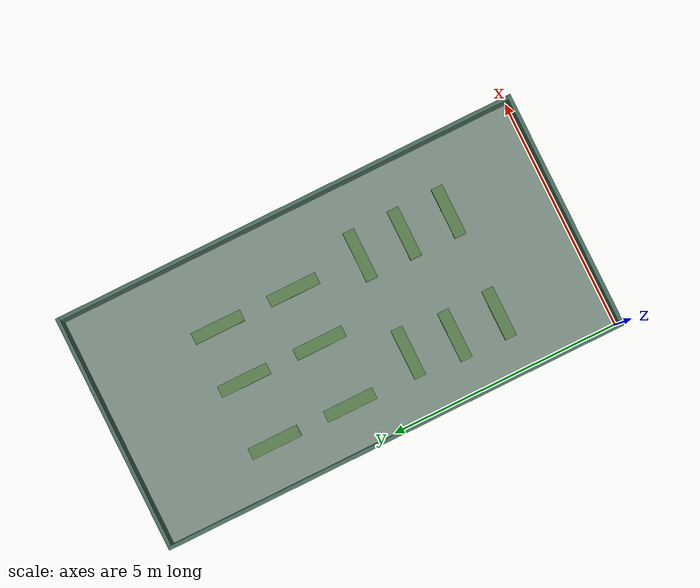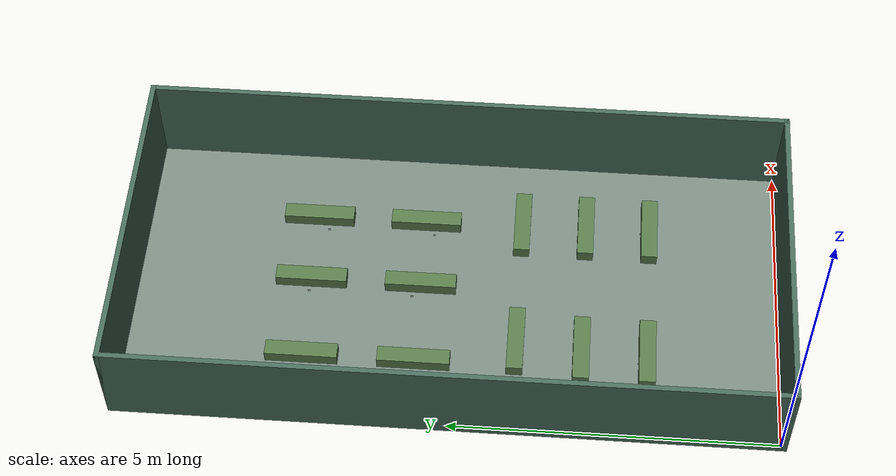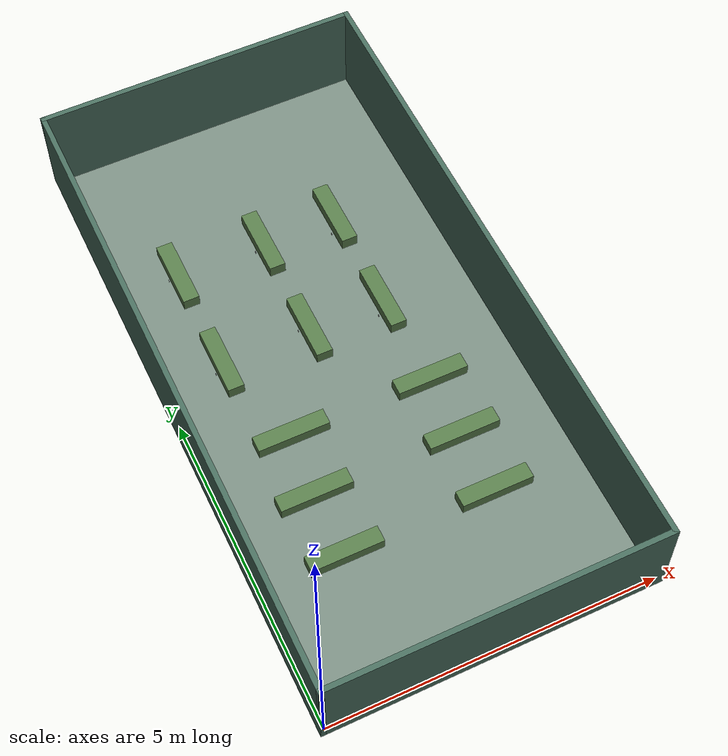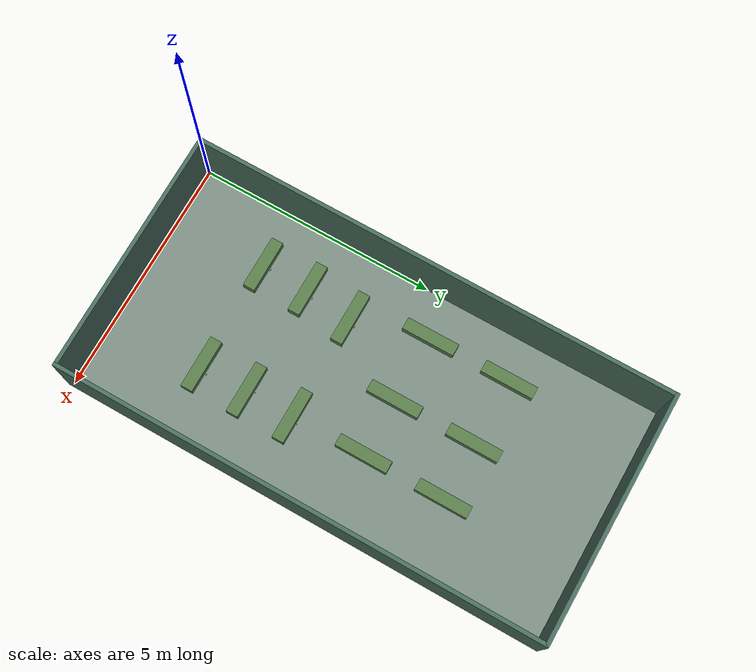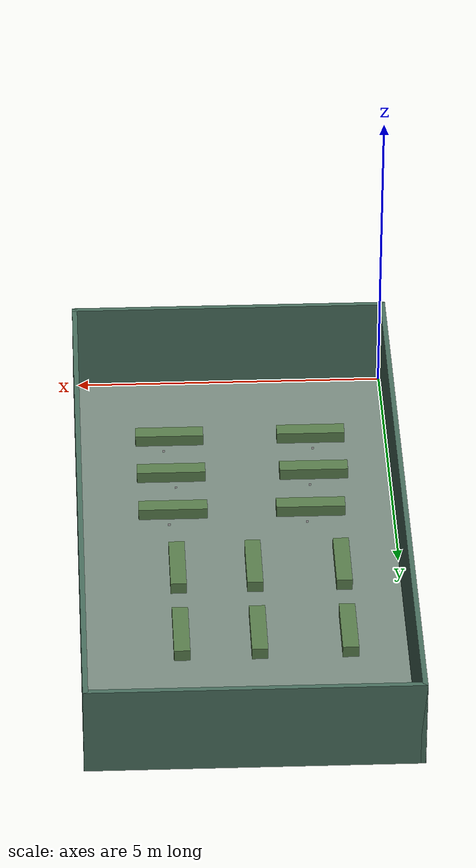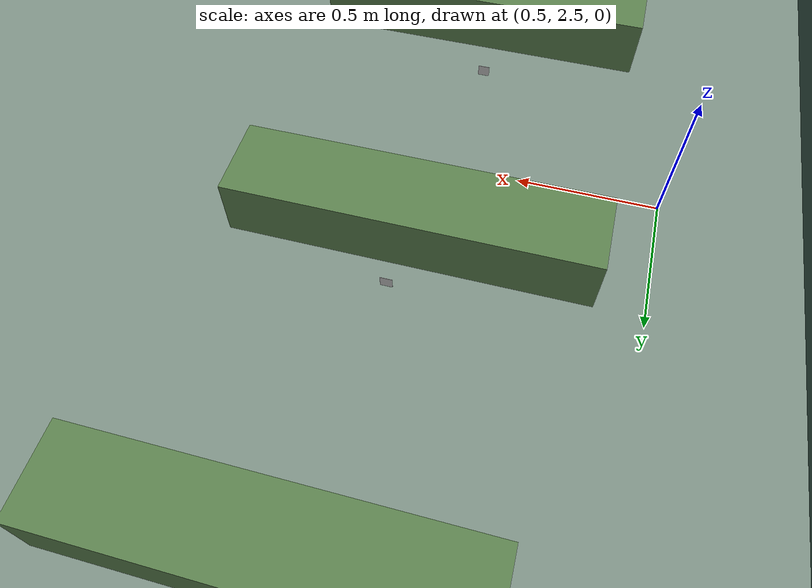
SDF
<sdf version="1.7">
 <world name="mdp_greenhouse">
  <gravity>0 0 -9.8066</gravity>
  <physics name="default_physics" type="ode">
   <max_step_size>0.001</max_step_size>
   <real_time_factor>1</real_time_factor>
   <real_time_update_rate>1000</real_time_update_rate>
  </physics>
  <scene>
   <ambient>0.55 0.58 0.55 1</ambient>
   <background>0.78 0.84 0.88 1</background>
   <shadows>1</shadows>
  </scene>
  <light name="sun" type="directional">
   <pose>2.5 5 10 0 -0 0</pose>
   <diffuse>0.8 0.8 0.75 1</diffuse>
   <specular>0.2 0.2 0.2 1</specular>
   <direction>-0.25 0.45 -1</direction>
   <attenuation><range>10</range></attenuation>
   <spot><inner_angle>0</inner_angle><outer_angle>0</outer_angle><falloff>0</falloff></spot>
  </light>
  <model name="mdp_greenhouse_environment">
   <static>1</static>
   <link name="floor">
    <pose>2.5 5 -0.01 0 -0 0</pose>
    <collision name="collision"><geometry><box><size>5 10 0.02</size></box></geometry></collision>
    <visual name="visual">
     <geometry><box><size>5 10 0.02</size></box></geometry>
     <material><ambient>0.47 0.54 0.5 1</ambient><diffuse>0.47 0.54 0.5 1</diffuse></material>
    </visual>
   </link>
   <link name="west_wall">
    <pose>-0.04 5 0.75 0 -0 0</pose>
    <collision name="collision"><geometry><box><size>0.08 10.16 1.5</size></box></geometry></collision>
    <visual name="visual">
     <geometry><box><size>0.08 10.16 1.5</size></box></geometry>
     <material><ambient>0.28 0.42 0.36 1</ambient><diffuse>0.28 0.42 0.36 1</diffuse></material>
    </visual>
   </link>
   <link name="east_wall">
    <pose>5.04 5 0.75 0 -0 0</pose>
    <collision name="collision"><geometry><box><size>0.08 10.16 1.5</size></box></geometry></collision>
    <visual name="visual">
     <geometry><box><size>0.08 10.16 1.5</size></box></geometry>
     <material><ambient>0.28 0.42 0.36 1</ambient><diffuse>0.28 0.42 0.36 1</diffuse></material>
    </visual>
   </link>
   <link name="south_wall">
    <pose>2.5 -0.04 0.75 0 -0 0</pose>
    <collision name="collision"><geometry><box><size>5.16 0.08 1.5</size></box></geometry></collision>
    <visual name="visual">
     <geometry><box><size>5.16 0.08 1.5</size></box></geometry>
     <material><ambient>0.28 0.42 0.36 1</ambient><diffuse>0.28 0.42 0.36 1</diffuse></material>
    </visual>
   </link>
   <link name="north_wall">
    <pose>2.5 10.04 0.75 0 -0 0</pose>
    <collision name="collision"><geometry><box><size>5.16 0.08 1.5</size></box></geometry></collision>
    <visual name="visual">
     <geometry><box><size>5.16 0.08 1.5</size></box></geometry>
     <material><ambient>0.28 0.42 0.36 1</ambient><diffuse>0.28 0.42 0.36 1</diffuse></material>
    </visual>
   </link>
   <link name="table_1">
    <pose>1.25 2.025 0.375 0 -0 0</pose>
    <collision name="collision"><geometry><box><size>1.1 0.25 0.19</size></box></geometry></collision>
    <visual name="visual">
     <geometry><box><size>1.1 0.25 0.19</size></box></geometry>
     <material><ambient>0.34 0.48 0.29 1</ambient><diffuse>0.34 0.48 0.29 1</diffuse></material>
    </visual>
   </link>
   <link name="table_2">
    <pose>3.55 2.025 0.375 0 -0 0</pose>
    <collision name="collision"><geometry><box><size>1.1 0.25 0.19</size></box></geometry></collision>
    <visual name="visual">
     <geometry><box><size>1.1 0.25 0.19</size></box></geometry>
     <material><ambient>0.34 0.48 0.29 1</ambient><diffuse>0.34 0.48 0.29 1</diffuse></material>
    </visual>
   </link>
   <link name="table_3">
    <pose>1.25 3.025 0.375 0 -0 0</pose>
    <collision name="collision"><geometry><box><size>1.1 0.25 0.19</size></box></geometry></collision>
    <visual name="visual">
     <geometry><box><size>1.1 0.25 0.19</size></box></geometry>
     <material><ambient>0.34 0.48 0.29 1</ambient><diffuse>0.34 0.48 0.29 1</diffuse></material>
    </visual>
   </link>
   <link name="table_4">
    <pose>3.55 3.025 0.375 0 -0 0</pose>
    <collision name="collision"><geometry><box><size>1.1 0.25 0.19</size></box></geometry></collision>
    <visual name="visual">
     <geometry><box><size>1.1 0.25 0.19</size></box></geometry>
     <material><ambient>0.34 0.48 0.29 1</ambient><diffuse>0.34 0.48 0.29 1</diffuse></material>
    </visual>
   </link>
   <link name="table_5">
    <pose>1.35 4.025 0.375 0 -0 0</pose>
    <collision name="collision"><geometry><box><size>1.1 0.25 0.19</size></box></geometry></collision>
    <visual name="visual">
     <geometry><box><size>1.1 0.25 0.19</size></box></geometry>
     <material><ambient>0.34 0.48 0.29 1</ambient><diffuse>0.34 0.48 0.29 1</diffuse></material>
    </visual>
   </link>
   <link name="table_6">
    <pose>3.55 4.025 0.375 0 -0 0</pose>
    <collision name="collision"><geometry><box><size>1.1 0.25 0.19</size></box></geometry></collision>
    <visual name="visual">
     <geometry><box><size>1.1 0.25 0.19</size></box></geometry>
     <material><ambient>0.34 0.48 0.29 1</ambient><diffuse>0.34 0.48 0.29 1</diffuse></material>
    </visual>
   </link>
   <link name="table_7">
    <pose>0.925 5.55 0.375 0 -0 0</pose>
    <collision name="collision"><geometry><box><size>0.25 1.1 0.19</size></box></geometry></collision>
    <visual name="visual">
     <geometry><box><size>0.25 1.1 0.19</size></box></geometry>
     <material><ambient>0.34 0.48 0.29 1</ambient><diffuse>0.34 0.48 0.29 1</diffuse></material>
    </visual>
   </link>
   <link name="table_8">
    <pose>2.325 5.55 0.375 0 -0 0</pose>
    <collision name="collision"><geometry><box><size>0.25 1.1 0.19</size></box></geometry></collision>
    <visual name="visual">
     <geometry><box><size>0.25 1.1 0.19</size></box></geometry>
     <material><ambient>0.34 0.48 0.29 1</ambient><diffuse>0.34 0.48 0.29 1</diffuse></material>
    </visual>
   </link>
   <link name="table_9">
    <pose>3.525 5.55 0.375 0 -0 0</pose>
    <collision name="collision"><geometry><box><size>0.25 1.1 0.19</size></box></geometry></collision>
    <visual name="visual">
     <geometry><box><size>0.25 1.1 0.19</size></box></geometry>
     <material><ambient>0.34 0.48 0.29 1</ambient><diffuse>0.34 0.48 0.29 1</diffuse></material>
    </visual>
   </link>
   <link name="table_10">
    <pose>0.925 7.25 0.375 0 -0 0</pose>
    <collision name="collision"><geometry><box><size>0.25 1.1 0.19</size></box></geometry></collision>
    <visual name="visual">
     <geometry><box><size>0.25 1.1 0.19</size></box></geometry>
     <material><ambient>0.34 0.48 0.29 1</ambient><diffuse>0.34 0.48 0.29 1</diffuse></material>
    </visual>
   </link>
   <link name="table_11">
    <pose>2.325 7.25 0.375 0 -0 0</pose>
    <collision name="collision"><geometry><box><size>0.25 1.1 0.19</size></box></geometry></collision>
    <visual name="visual">
     <geometry><box><size>0.25 1.1 0.19</size></box></geometry>
     <material><ambient>0.34 0.48 0.29 1</ambient><diffuse>0.34 0.48 0.29 1</diffuse></material>
    </visual>
   </link>
   <link name="table_12">
    <pose>3.525 7.25 0.375 0 -0 0</pose>
    <collision name="collision"><geometry><box><size>0.25 1.1 0.19</size></box></geometry></collision>
    <visual name="visual">
     <geometry><box><size>0.25 1.1 0.19</size></box></geometry>
     <material><ambient>0.34 0.48 0.29 1</ambient><diffuse>0.34 0.48 0.29 1</diffuse></material>
    </visual>
   </link>
  </model>
  <magnetic_field>6e-06 2.3e-05 -4.2e-05</magnetic_field>
  <atmosphere type="adiabatic"/>
  <audio><device>default</device></audio>
  <spherical_coordinates>
   <surface_model>EARTH_WGS84</surface_model>
   <latitude_deg>0</latitude_deg>
   <longitude_deg>0</longitude_deg>
   <elevation>0</elevation>
   <heading_deg>0</heading_deg>
  </spherical_coordinates>
  <model name="apriltag_1">
   <static>1</static>
   <link name="link">
    <pose>0 0 0.17 3.14159 1.57079 3.14159</pose>
    <visual name="visual">
     <geometry><box><size>0.04 0.04 0.001</size></box></geometry>
     <material>
      <script>
       <uri>model://apriltag_1/materials/scripts</uri>
       <uri>model://apriltag_1/materials/textures</uri>
       <name>AprilTag/Tag1</name>
      </script>
     </material>
    </visual>
    <collision name="collision"><geometry><box><size>0.04 0.04 0.001</size></box></geometry></collision>
   </link>
   <pose>0.798845 7.34697 -0 0 -0 0</pose>
  </model>
  <model name="apriltag_2">
   <static>1</static>
   <link name="link">
    <pose>0 0 0.17 3.14159 1.57079 3.14159</pose>
    <visual name="visual">
     <geometry><box><size>0.04 0.04 0.001</size></box></geometry>
     <material>
      <script>
       <uri>model://apriltag_2/materials/scripts</uri>
       <uri>model://apriltag_2/materials/textures</uri>
       <name>AprilTag/Tag2</name>
      </script>
     </material>
    </visual>
    <collision name="collision"><geometry><box><size>0.04 0.04 0.001</size></box></geometry></collision>
   </link>
   <pose>2.19933 7.28987 -0 0 -0 0</pose>
  </model>
  <model name="apriltag_3">
   <static>1</static>
   <link name="link">
    <pose>0 0 0.17 3.14159 1.57079 3.14159</pose>
    <visual name="visual">
     <geometry><box><size>0.04 0.04 0.001</size></box></geometry>
     <material>
      <script>
       <uri>model://apriltag_3/materials/scripts</uri>
       <uri>model://apriltag_3/materials/textures</uri>
       <name>AprilTag/Tag3</name>
      </script>
     </material>
    </visual>
    <collision name="collision"><geometry><box><size>0.04 0.04 0.001</size></box></geometry></collision>
   </link>
   <pose>3.39983 7.10297 -0 0 -0 0</pose>
  </model>
  <model name="apriltag_4">
   <static>1</static>
   <link name="link">
    <pose>0 0 0.17 3.14159 1.57079 3.14159</pose>
    <visual name="visual">
     <geometry><box><size>0.04 0.04 0.001</size></box></geometry>
     <material>
      <script>
       <uri>model://apriltag_4/materials/scripts</uri>
       <uri>model://apriltag_4/materials/textures</uri>
       <name>AprilTag/Tag4</name>
      </script>
     </material>
    </visual>
    <collision name="collision"><geometry><box><size>0.04 0.04 0.001</size></box></geometry></collision>
   </link>
   <pose>0.798891 5.51092 -0 0 -0 0</pose>
  </model>
  <model name="apriltag_5">
   <static>1</static>
   <link name="link">
    <pose>0 0 0.17 3.14159 1.57079 3.14159</pose>
    <visual name="visual">
     <geometry><box><size>0.04 0.04 0.001</size></box></geometry>
     <material>
      <script>
       <uri>model://apriltag_5/materials/scripts</uri>
       <uri>model://apriltag_5/materials/textures</uri>
       <name>AprilTag/Tag5</name>
      </script>
     </material>
    </visual>
    <collision name="collision"><geometry><box><size>0.04 0.04 0.001</size></box></geometry></collision>
   </link>
   <pose>2.19787 5.68217 -0 0 -0 0</pose>
  </model>
  <model name="apriltag_6">
   <static>1</static>
   <link name="link">
    <pose>0 0 0.17 3.14159 1.57079 3.14159</pose>
    <visual name="visual">
     <geometry><box><size>0.04 0.04 0.001</size></box></geometry>
     <material>
      <script>
       <uri>model://apriltag_6/materials/scripts</uri>
       <uri>model://apriltag_6/materials/textures</uri>
       <name>AprilTag/Tag6</name>
      </script>
     </material>
    </visual>
    <collision name="collision"><geometry><box><size>0.04 0.04 0.001</size></box></geometry></collision>
   </link>
   <pose>3.39879 5.41894 -0 0 -0 0</pose>
  </model>
  <model name="apriltag_7">
   <static>1</static>
   <link name="link">
    <pose>0 0 0.17 1.5708 -0 0</pose>
    <visual name="visual">
     <geometry><box><size>0.04 0.04 0.001</size></box></geometry>
     <material>
      <script>
       <uri>model://apriltag_7/materials/scripts</uri>
       <uri>model://apriltag_7/materials/textures</uri>
       <name>AprilTag/Tag7</name>
      </script>
     </material>
    </visual>
    <collision name="collision"><geometry><box><size>0.04 0.04 0.001</size></box></geometry></collision>
   </link>
   <pose>1.40567 4.15006 -0 0 -0 0</pose>
  </model>
  <model name="apriltag_8">
   <static>1</static>
   <link name="link">
    <pose>0 0 0.17 1.5708 -0 0</pose>
    <visual name="visual">
     <geometry><box><size>0.04 0.04 0.001</size></box></geometry>
     <material>
      <script>
       <uri>model://apriltag_8/materials/scripts</uri>
       <uri>model://apriltag_8/materials/textures</uri>
       <name>AprilTag/Tag8</name>
      </script>
     </material>
    </visual>
    <collision name="collision"><geometry><box><size>0.04 0.04 0.001</size></box></geometry></collision>
   </link>
   <pose>3.61425 4.15086 -0 0 -0 0</pose>
  </model>
  <model name="apriltag_9">
   <static>1</static>
   <link name="link">
    <pose>0 0 0.17 1.5708 -0 0</pose>
    <visual name="visual">
     <geometry><box><size>0.04 0.04 0.001</size></box></geometry>
     <material>
      <script>
       <uri>model://apriltag_9/materials/scripts</uri>
       <uri>model://apriltag_9/materials/textures</uri>
       <name>AprilTag/Tag9</name>
      </script>
     </material>
    </visual>
    <collision name="collision"><geometry><box><size>0.04 0.04 0.001</size></box></geometry></collision>
   </link>
   <pose>1.30993 3.15197 -0 0 -0 0</pose>
  </model>
  <model name="apriltag_10">
   <static>1</static>
   <link name="link">
    <pose>0 0 0.17 1.5708 -0 0</pose>
    <visual name="visual">
     <geometry><box><size>0.04 0.04 0.001</size></box></geometry>
     <material>
      <script>
       <uri>model://apriltag_10/materials/scripts</uri>
       <uri>model://apriltag_10/materials/textures</uri>
       <name>AprilTag/Tag10</name>
      </script>
     </material>
    </visual>
    <collision name="collision"><geometry><box><size>0.04 0.04 0.001</size></box></geometry></collision>
   </link>
   <pose>3.47387 3.15119 -0 0 -0 0</pose>
  </model>
  <model name="apriltag_11">
   <static>1</static>
   <link name="link">
    <pose>0 0 0.17 1.5708 -0 0</pose>
    <visual name="visual">
     <geometry><box><size>0.04 0.04 0.001</size></box></geometry>
     <material>
      <script>
       <uri>model://apriltag_11/materials/scripts</uri>
       <uri>model://apriltag_11/materials/textures</uri>
       <name>AprilTag/Tag11</name>
      </script>
     </material>
    </visual>
    <collision name="collision"><geometry><box><size>0.04 0.04 0.001</size></box></geometry></collision>
   </link>
   <pose>1.21358 2.1504 -0 0 -0 0</pose>
  </model>
  <model name="apriltag_12">
   <static>1</static>
   <link name="link">
    <pose>0 0 0.17 1.5708 -0 0</pose>
    <visual name="visual">
     <geometry><box><size>0.04 0.04 0.001</size></box></geometry>
     <material>
      <script>
       <uri>model://apriltag_12/materials/scripts</uri>
       <uri>model://apriltag_12/materials/textures</uri>
       <name>AprilTag/Tag12</name>
      </script>
     </material>
    </visual>
    <collision name="collision"><geometry><box><size>0.04 0.04 0.001</size></box></geometry></collision>
   </link>
   <pose>3.64443 2.15148 -0 0 -0 0</pose>
  </model>
 </world>
</sdf>
